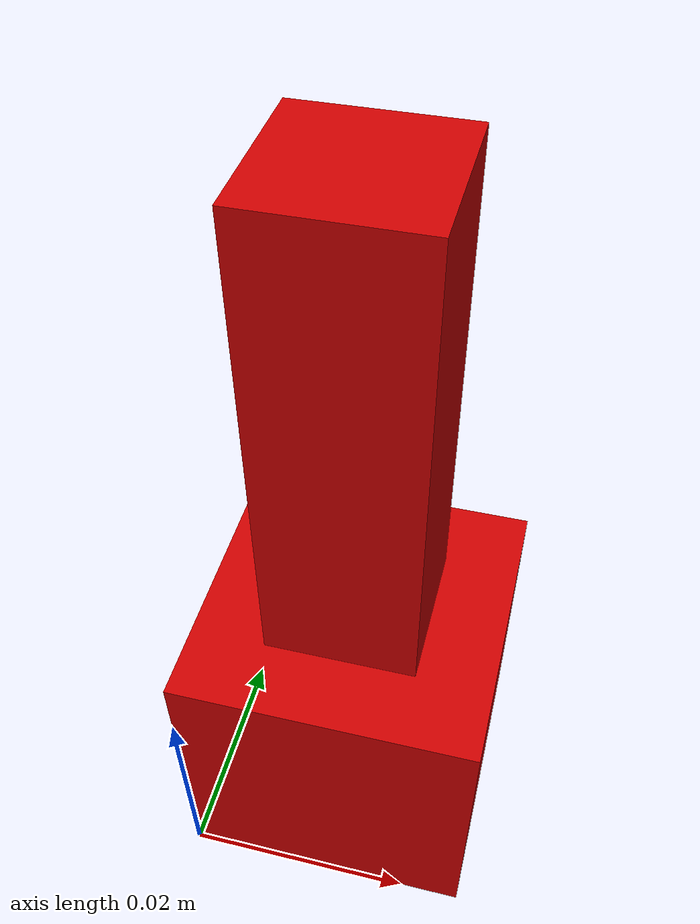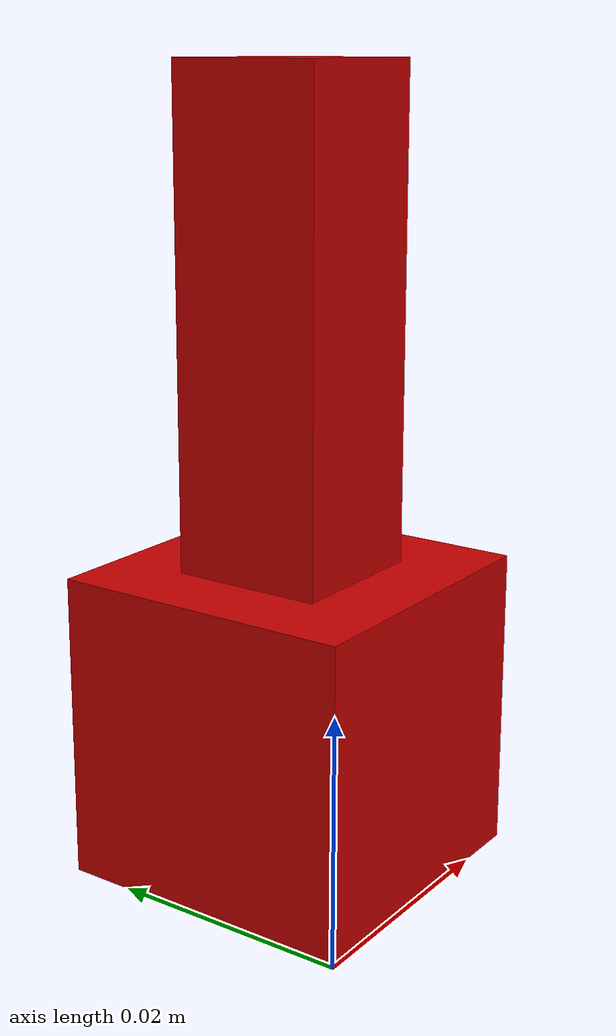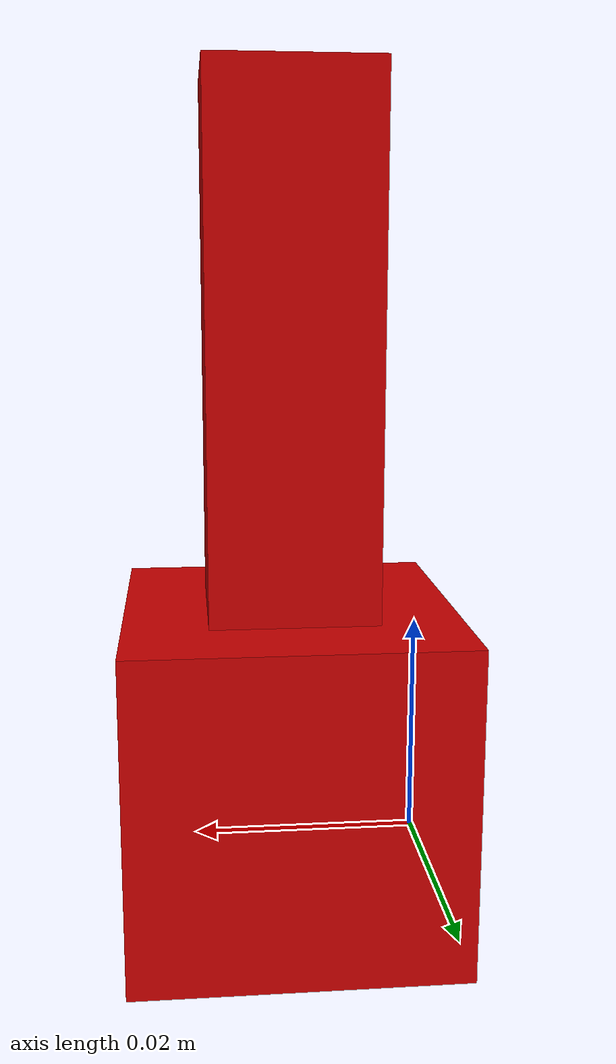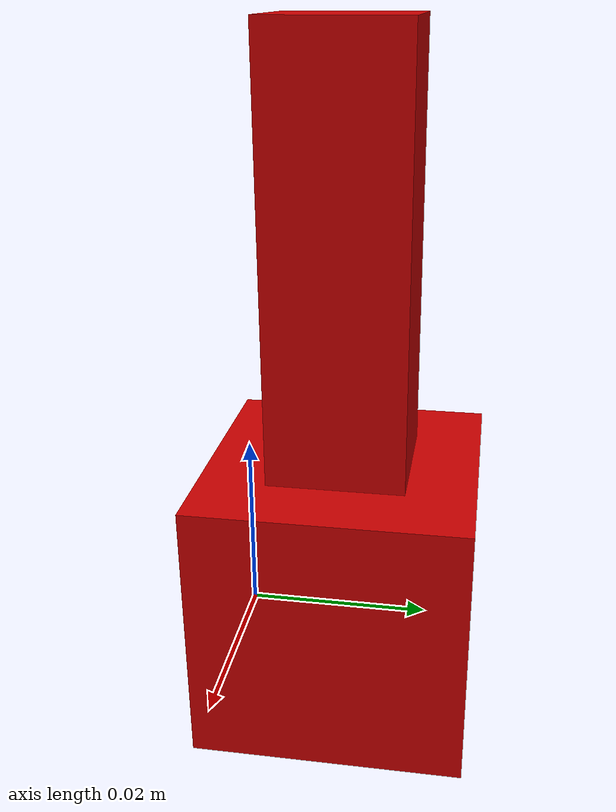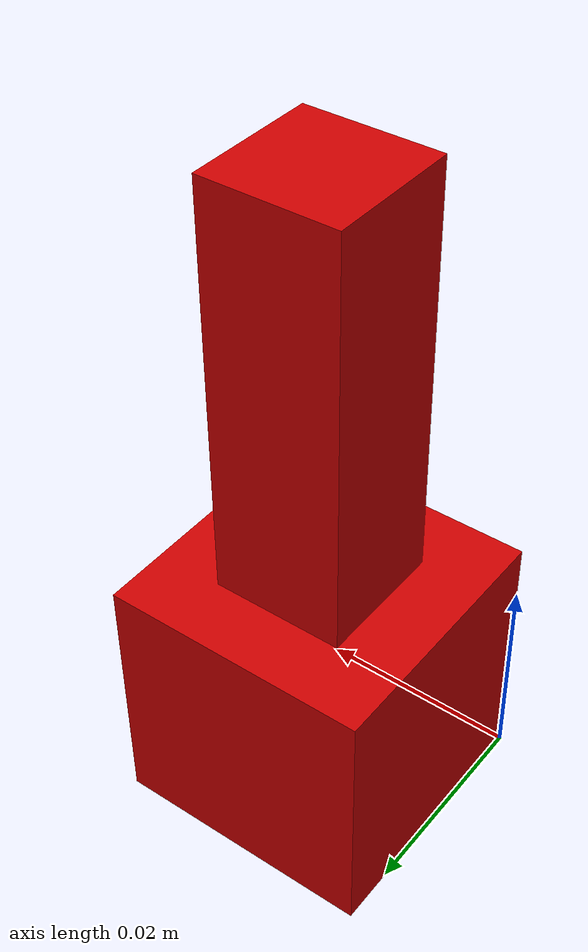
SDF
<?xml version="1.0" ?>
<sdf version="1.9">
  <model name="button">
    <static>true</static>
    <link name="link">
      <collision name="button_collision">
        <pose>0 0 0.0 0 0 0</pose>
        <geometry>
          <mesh>
            <uri>meshes/1x1Button.stl</uri>
          </mesh>
        </geometry>
      </collision>
      <visual name="button_visual">
        <geometry>
          <mesh>
            <uri>meshes/1x1Button.stl</uri>
          </mesh>
        </geometry>
        <material>
          <ambient>0.5 0.0 0.0 1</ambient>
          <diffuse>0.8 0.0 0.0 1</diffuse>
          <specular>0.9 0.4 0.4 1</specular>
        </material>
      </visual>
      <sensor name="button_contact" type="contact">
        <contact>
          <collision>button_collision</collision>
        </contact>
        <always_on>true</always_on>
        <update_rate>30</update_rate>
      </sensor>
    </link>
    <plugin filename="ignition-gazebo-contact-system" name="gz::sim::systems::Contact"/>
  </model>
</sdf>
